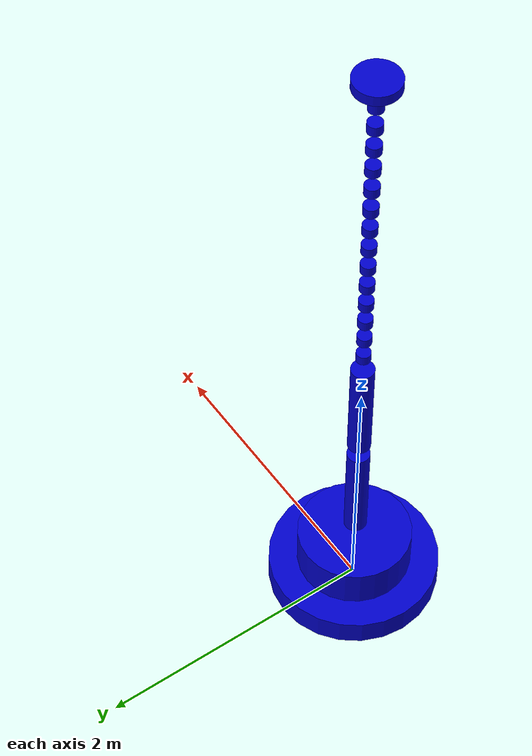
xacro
<?xml version="1.0"?>
<robot xmlns:xacro="http://www.ros.org/wiki/xacro" name="continuum_robot">
    <xacro:arg name="initial_positions_file" default="initial_positions.yaml" />

    <!-- Import continuum_robot urdf file -->
    <xacro:include filename="$(find continuum_robot)/urdf/snake_robot.xacro.urdf" />

    <!-- Import control_xacro -->
    <xacro:include filename="continuum_robot.ros2_control.xacro" />

    <xacro:continuum_robot_ros2_control name="FakeSystem" initial_positions_file="$(arg initial_positions_file)"/>

</robot>

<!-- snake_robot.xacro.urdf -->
<robot xmlns:xacro="http://www.ros.org/wiki/xacro" name="continuum_robot">

    <xacro:include filename="$(find continuum_robot)/urdf/snake_robot.xacro"/>

    <link name="sr_link0">
        <xacro:sr_link_module radius="${l0_radius}" length="${l0_length}" xyz="0 0 0" rpy="0 0 0" mass="1"/>
    </link>

    <link name="sr_link1">
        <xacro:sr_link_module radius="${l1_radius}" length="${l1_length}" xyz="0 0 ${l1_length/2}" rpy="0 0 0" mass="0.05"/>
    </link>

    <joint name="sr_joint1" type="revolute">
        <xacro:sr_joint rpy="0 0 0" xyz="0 0 ${l0_length/2 + offset}" parent="sr_link0" child="sr_link1" axis="0 0 1" />
    </joint>

    <link name="sr_link2">
        <xacro:sr_link_module radius="${l2_radius}" length="${l2_length}" xyz="0 0 ${l2_length/2}" rpy="0 0 0" mass="0.05"/>
    </link>

    <joint name="sr_joint2" type="revolute">
        <xacro:sr_joint rpy="0 0 0" xyz="0 0 ${l1_length + offset}" parent="sr_link1" child="sr_link2" axis="1 0 0" />
    </joint>

    <link name="sr_link3">
        <xacro:sr_link_module radius="${l2_radius}" length="${l2_length}" xyz="0 0 ${l2_length/2}" rpy="0 0 0" mass="0.05"/>
    </link>

    <joint name="sr_joint3" type="revolute">
        <xacro:sr_joint rpy="0 0 0" xyz="0 0 ${l2_length + offset}" parent="sr_link2" child="sr_link3" axis="0 1 0" />
    </joint>

<!--    start of snake robot end-effector-->

    <xacro:include filename="$(find continuum_robot)/urdf/snake_robot_end_effector.xacro"/>
    <xacro:sr_ee_module/>

<!--    https://github.com/jhu-lcsr-forks/gazebo_ros_pkgs/blob/hydro-devel/gazebo_plugins/include/gazebo_plugins/gazebo_ros_moveit_planning_scene.h#L50-L82-->

</robot>

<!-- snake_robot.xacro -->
<robot xmlns:xacro="http://www.ros.org/wiki/xacro" >
    <material name="blue">
        <color rgba="0 0 0.8 1"/>
    </material>

    <material name="white">
        <color rgba="1 1 1 1"/>
    </material>

    <xacro:property name="offset" value="0.1" />
    <xacro:property name="l0_radius" value="0.6" />
    <xacro:property name="l0_length" value="0.2" />
    <xacro:property name="l1_radius" value="0.4" />
    <xacro:property name="l1_length" value="0.3" />
    <xacro:property name="l2_radius" value="0.08" />
    <xacro:property name="l2_length" value="0.8" />

    <xacro:macro name="link_inertia" params="mass">
        <inertial>
            <mass value="${mass}" />
            <inertia ixx="1e-3" ixy="0.0" ixz="0.0"
                     iyy="1e-3" iyz="0.0"
                     izz="1e-3" />
        </inertial>
    </xacro:macro>

    <xacro:macro name="link_visual" params="radius length xyz rpy">  <!-- only for cylinder -->
        <visual>
            <geometry>
                <cylinder radius="${radius}" length="${length}"/>
            </geometry>
            <material name="blue"/>
            <origin xyz="${xyz}" rpy="${rpy}"/>
        </visual>
    </xacro:macro>

    <xacro:macro name="link_collision" params="radius length">  <!-- only for cylinder -->
        <collision>
            <geometry>
                <cylinder radius="${radius}" length="${length}"/>
            </geometry>
        </collision>
    </xacro:macro>

    <xacro:macro name="sr_link_module" params="radius length xyz rpy mass">  <!-- only for cylinder -->
        <xacro:link_visual radius="${radius}" length="${length}" xyz="0 0 ${length/2}" rpy="0 0 0"/>
        <xacro:link_collision radius="${radius}" length="${length}"/>
        <xacro:link_inertia mass="${mass}"/>
    </xacro:macro>

    <xacro:macro name="sr_joint" params="rpy xyz parent child axis">  <!-- only for revolute -->
        <origin rpy="${rpy}" xyz="${xyz}"/>
        <parent link="${parent}"/>
        <child link="${child}"/>
        <axis xyz="${axis}" />
        <limit effort="87" lower="-0.785" upper="0.785" velocity="2.1750"/>
        <safety_controller k_position="100.0" k_velocity="40.0" soft_lower_limit="-2.8973" soft_upper_limit="2.8973"/>
    </xacro:macro>

</robot>

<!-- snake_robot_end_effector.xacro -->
<robot xmlns:xacro="http://www.ros.org/wiki/xacro" >
    <xacro:property name="radius" value="0.05" />
    <xacro:property name="length" value="0.07" />

    <xacro:macro name="sr_ee_module">  <!-- only for cylinder -->
        <link name="sr_ee_link1">
            <xacro:sr_link_module radius="${radius}" length="${length}" xyz="0 0 ${length/2}" rpy="0 0 0" mass="0.005"/>
        </link>
        <joint name="sr_ee_joint1" type="revolute">
            <xacro:sr_joint rpy="0 0 0" xyz="0 0 ${l2_length + offset}" parent="sr_link3" child="sr_ee_link1" axis="0 1 0" />
        </joint>

        <link name="sr_ee_link2">
            <xacro:sr_link_module radius="${radius}" length="${length}" xyz="0 0 ${length/2}" rpy="0 0 0" mass="0.005"/>
        </link>
        <joint name="sr_ee_joint2" type="revolute">
            <xacro:sr_joint rpy="0 0 0" xyz="0 0 ${length + offset}" parent="sr_ee_link1" child="sr_ee_link2" axis="1 0 0" />
        </joint>

        <link name="sr_ee_link3">
            <xacro:sr_link_module radius="${radius}" length="${length}" xyz="0 0 ${length/2}" rpy="0 0 0" mass="0.005"/>
        </link>
        <joint name="sr_ee_joint3" type="revolute">
            <xacro:sr_joint rpy="0 0 0" xyz="0 0 ${length + offset}" parent="sr_ee_link2" child="sr_ee_link3" axis="0 0 1" />
        </joint>

        <link name="sr_ee_link4">
            <xacro:sr_link_module radius="${radius}" length="${length}" xyz="0 0 ${length/2}" rpy="0 0 0" mass="0.005"/>
        </link>
        <joint name="sr_ee_joint4" type="revolute">
            <xacro:sr_joint rpy="0 0 0" xyz="0 0 ${length + offset}" parent="sr_ee_link3" child="sr_ee_link4" axis="1 0 0" />
        </joint>

        <link name="sr_ee_link5">
            <xacro:sr_link_module radius="${radius}" length="${length}" xyz="0 0 ${length/2}" rpy="0 0 0" mass="0.005"/>
        </link>
        <joint name="sr_ee_joint5" type="revolute">
            <xacro:sr_joint rpy="0 0 0" xyz="0 0 ${length + offset}" parent="sr_ee_link4" child="sr_ee_link5" axis="0 1 0" />
        </joint>

        <link name="sr_ee_link6">
            <xacro:sr_link_module radius="${radius}" length="${length}" xyz="0 0 ${length/2}" rpy="0 0 0" mass="0.005"/>
        </link>
        <joint name="sr_ee_joint6" type="revolute">
            <xacro:sr_joint rpy="0 0 0" xyz="0 0 ${length + offset}" parent="sr_ee_link5" child="sr_ee_link6" axis="0 0 1" />
        </joint>

        <link name="sr_ee_link7">
            <xacro:sr_link_module radius="${radius}" length="${length}" xyz="0 0 ${length/2}" rpy="0 0 0" mass="0.005"/>
        </link>
        <joint name="sr_ee_joint7" type="revolute">
            <xacro:sr_joint rpy="0 0 0" xyz="0 0 ${length + offset}" parent="sr_ee_link6" child="sr_ee_link7" axis="0 1 0" />
        </joint>

        <link name="sr_ee_link8">
            <xacro:sr_link_module radius="${radius}" length="${length}" xyz="0 0 ${length/2}" rpy="0 0 0" mass="0.005"/>
        </link>
        <joint name="sr_ee_joint8" type="revolute">
            <xacro:sr_joint rpy="0 0 0" xyz="0 0 ${length + offset}" parent="sr_ee_link7" child="sr_ee_link8" axis="1 0 0" />
        </joint>

        <link name="sr_ee_link9">
            <xacro:sr_link_module radius="${radius}" length="${length}" xyz="0 0 ${length/2}" rpy="0 0 0" mass="0.005"/>
        </link>
        <joint name="sr_ee_joint9" type="revolute">
            <xacro:sr_joint rpy="0 0 0" xyz="0 0 ${length + offset}" parent="sr_ee_link8" child="sr_ee_link9" axis="0 0 1" />
        </joint>

        <link name="sr_ee_link10">
            <xacro:sr_link_module radius="${radius}" length="${length}" xyz="0 0 ${length/2}" rpy="0 0 0" mass="0.005"/>
        </link>
        <joint name="sr_ee_joint10" type="revolute">
            <xacro:sr_joint rpy="0 0 0" xyz="0 0 ${length + offset}" parent="sr_ee_link9" child="sr_ee_link10" axis="1 0 0" />
        </joint>

        <link name="sr_ee_link11">
            <xacro:sr_link_module radius="${radius}" length="${length}" xyz="0 0 ${length/2}" rpy="0 0 0" mass="0.005"/>
        </link>
        <joint name="sr_ee_joint11" type="revolute">
            <xacro:sr_joint rpy="0 0 0" xyz="0 0 ${length + offset}" parent="sr_ee_link10" child="sr_ee_link11" axis="0 1 0" />
        </joint>

        <link name="sr_ee_link12">
            <xacro:sr_link_module radius="${radius}" length="${length}" xyz="0 0 ${length/2}" rpy="0 0 0" mass="0.005"/>
        </link>
        <joint name="sr_ee_joint12" type="revolute">
            <xacro:sr_joint rpy="0 0 0" xyz="0 0 ${length + offset}" parent="sr_ee_link11" child="sr_ee_link12" axis="0 0 1" />
        </joint>

        <link name="sr_ee_link13">
            <xacro:sr_link_module radius="${radius}" length="${length}" xyz="0 0 ${length/2}" rpy="0 0 0" mass="0.005"/>
        </link>
        <joint name="sr_ee_joint13" type="revolute">
            <xacro:sr_joint rpy="0 0 0" xyz="0 0 ${length + offset}" parent="sr_ee_link12" child="sr_ee_link13" axis="1 0 0" />
        </joint>

        <link name="sr_ee_link14">
            <xacro:sr_link_module radius="${radius}" length="${length}" xyz="0 0 ${length/2}" rpy="0 0 0" mass="0.005"/>
        </link>
        <joint name="sr_ee_joint14" type="revolute">
            <xacro:sr_joint rpy="0 0 0" xyz="0 0 ${length + offset}" parent="sr_ee_link13" child="sr_ee_link14" axis="0 1 0" />
        </joint>

        <!-- 15 fixed -->
        <link name="sr_ee_link15">
            <xacro:sr_link_module radius="${radius + 0.1}" length="${length}" xyz="0 0 ${length/2}" rpy="0 0 0" mass="0.005"/>
        </link>
        <joint name="sr_ee_joint15" type="fixed">
            <origin rpy="0 0 0" xyz="0 0 ${length + offset}"/>
            <parent link="sr_ee_link14"/>
            <child link="sr_ee_link15"/>
        </joint>

    </xacro:macro>

</robot>
